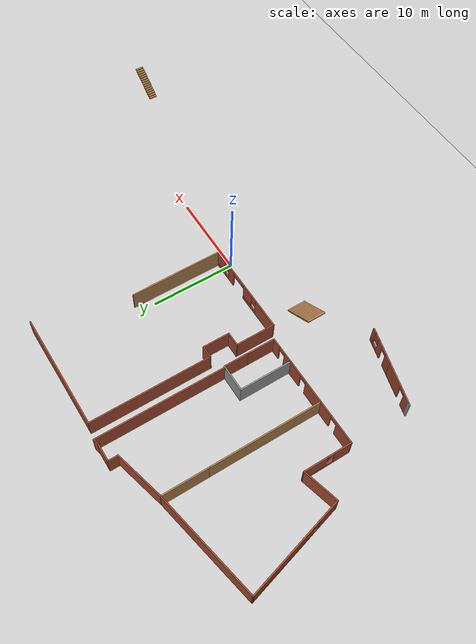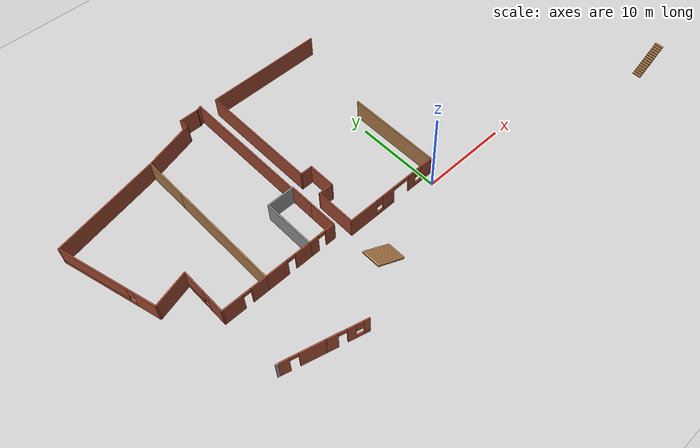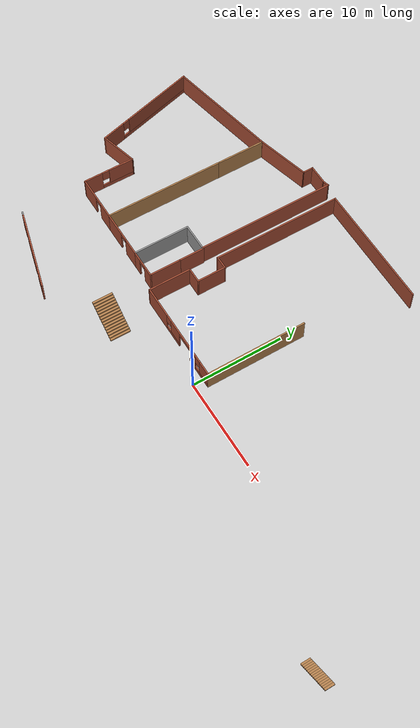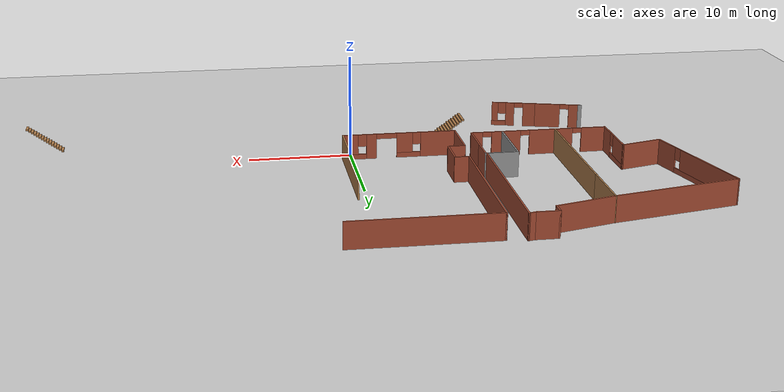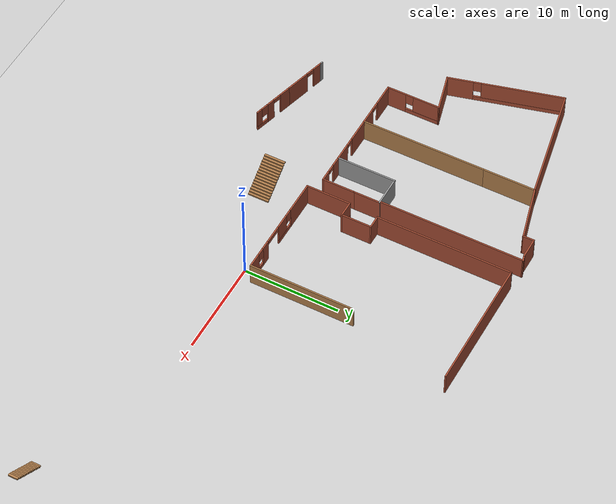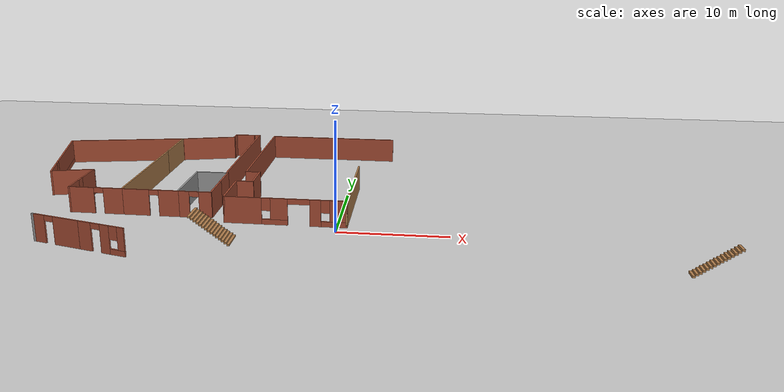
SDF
<sdf version="1.6">
 <world name="default">
  <model name="ground_plane">
   <static>1</static>
   <link name="link">
    <collision name="collision">
     <geometry><plane><normal>0 0 1</normal><size>100 100</size></plane></geometry>
     <surface><friction><ode><mu>100</mu><mu2>50</mu2></ode></friction></surface>
    </collision>
    <visual name="visual">
     <cast_shadows>0</cast_shadows>
     <geometry><plane><normal>0 0 1</normal><size>100 100</size></plane></geometry>
     <material>
      <script><uri>file://media/materials/scripts/gazebo.material</uri><name>Gazebo/Grey</name></script>
     </material>
    </visual>
   </link>
  </model>
  <model name="vital">
   <pose>1.2398 -2.19799 0 0 -0 0</pose>
   <link name="Stairs_0">
    <visual name="Stairs_0_Visual_0">
     <pose>-9.74123 -1.05523 0.083333 0 -0 -1.5708</pose>
     <geometry><box><size>2.22056 0.233333 0.166667</size></box></geometry>
     <material>
      <script><uri>file://media/materials/scripts/gazebo.material</uri><name>Gazebo/Wood</name></script>
      <ambient>1 1 1 1</ambient>
     </material>
    </visual>
    <collision name="Stairs_0_Collision_0">
     <geometry><box><size>2.22056 0.233333 0.166667</size></box></geometry>
     <pose>-9.74123 -1.05523 0.083333 0 -0 -1.5708</pose>
    </collision>
    <visual name="Stairs_0_Visual_1">
     <pose>-9.97456 -1.05523 0.25 0 -0 -1.5708</pose>
     <geometry><box><size>2.22056 0.233333 0.166667</size></box></geometry>
     <material>
      <script><uri>file://media/materials/scripts/gazebo.material</uri><name>Gazebo/Wood</name></script>
      <ambient>1 1 1 1</ambient>
     </material>
    </visual>
    <collision name="Stairs_0_Collision_1">
     <geometry><box><size>2.22056 0.233333 0.166667</size></box></geometry>
     <pose>-9.97456 -1.05523 0.25 0 -0 -1.5708</pose>
    </collision>
    <visual name="Stairs_0_Visual_2">
     <pose>-10.2079 -1.05523 0.416667 0 -0 -1.5708</pose>
     <geometry><box><size>2.22056 0.233333 0.166667</size></box></geometry>
     <material>
      <script><uri>file://media/materials/scripts/gazebo.material</uri><name>Gazebo/Wood</name></script>
      <ambient>1 1 1 1</ambient>
     </material>
    </visual>
    <collision name="Stairs_0_Collision_2">
     <geometry><box><size>2.22056 0.233333 0.166667</size></box></geometry>
     <pose>-10.2079 -1.05523 0.416667 0 -0 -1.5708</pose>
    </collision>
    <visual name="Stairs_0_Visual_3">
     <pose>-10.4412 -1.05523 0.583333 0 -0 -1.5708</pose>
     <geometry><box><size>2.22056 0.233333 0.166667</size></box></geometry>
     <material>
      <script><uri>file://media/materials/scripts/gazebo.material</uri><name>Gazebo/Wood</name></script>
      <ambient>1 1 1 1</ambient>
     </material>
    </visual>
    <collision name="Stairs_0_Collision_3">
     <geometry><box><size>2.22056 0.233333 0.166667</size></box></geometry>
     <pose>-10.4412 -1.05523 0.583333 0 -0 -1.5708</pose>
    </collision>
    <visual name="Stairs_0_Visual_4">
     <pose>-10.6746 -1.05523 0.75 0 -0 -1.5708</pose>
     <geometry><box><size>2.22056 0.233333 0.166667</size></box></geometry>
     <material>
      <script><uri>file://media/materials/scripts/gazebo.material</uri><name>Gazebo/Wood</name></script>
      <ambient>1 1 1 1</ambient>
     </material>
    </visual>
    <collision name="Stairs_0_Collision_4">
     <geometry><box><size>2.22056 0.233333 0.166667</size></box></geometry>
     <pose>-10.6746 -1.05523 0.75 0 -0 -1.5708</pose>
    </collision>
    <visual name="Stairs_0_Visual_5">
     <pose>-10.9079 -1.05523 0.916667 0 -0 -1.5708</pose>
     <geometry><box><size>2.22056 0.233333 0.166667</size></box></geometry>
     <material>
      <script><uri>file://media/materials/scripts/gazebo.material</uri><name>Gazebo/Wood</name></script>
      <ambient>1 1 1 1</ambient>
     </material>
    </visual>
    <collision name="Stairs_0_Collision_5">
     <geometry><box><size>2.22056 0.233333 0.166667</size></box></geometry>
     <pose>-10.9079 -1.05523 0.916667 0 -0 -1.5708</pose>
    </collision>
    <visual name="Stairs_0_Visual_6">
     <pose>-11.1412 -1.05523 1.08333 0 -0 -1.5708</pose>
     <geometry><box><size>2.22056 0.233333 0.166667</size></box></geometry>
     <material>
      <script><uri>file://media/materials/scripts/gazebo.material</uri><name>Gazebo/Wood</name></script>
      <ambient>1 1 1 1</ambient>
     </material>
    </visual>
    <collision name="Stairs_0_Collision_6">
     <geometry><box><size>2.22056 0.233333 0.166667</size></box></geometry>
     <pose>-11.1412 -1.05523 1.08333 0 -0 -1.5708</pose>
    </collision>
    <visual name="Stairs_0_Visual_7">
     <pose>-11.3746 -1.05523 1.25 0 -0 -1.5708</pose>
     <geometry><box><size>2.22056 0.233333 0.166667</size></box></geometry>
     <material>
      <script><uri>file://media/materials/scripts/gazebo.material</uri><name>Gazebo/Wood</name></script>
      <ambient>1 1 1 1</ambient>
     </material>
    </visual>
    <collision name="Stairs_0_Collision_7">
     <geometry><box><size>2.22056 0.233333 0.166667</size></box></geometry>
     <pose>-11.3746 -1.05523 1.25 0 -0 -1.5708</pose>
    </collision>
    <visual name="Stairs_0_Visual_8">
     <pose>-11.6079 -1.05523 1.41667 0 -0 -1.5708</pose>
     <geometry><box><size>2.22056 0.233333 0.166667</size></box></geometry>
     <material>
      <script><uri>file://media/materials/scripts/gazebo.material</uri><name>Gazebo/Wood</name></script>
      <ambient>1 1 1 1</ambient>
     </material>
    </visual>
    <collision name="Stairs_0_Collision_8">
     <geometry><box><size>2.22056 0.233333 0.166667</size></box></geometry>
     <pose>-11.6079 -1.05523 1.41667 0 -0 -1.5708</pose>
    </collision>
    <visual name="Stairs_0_Visual_9">
     <pose>-11.8412 -1.05523 1.58333 0 -0 -1.5708</pose>
     <geometry><box><size>2.22056 0.233333 0.166667</size></box></geometry>
     <material>
      <script><uri>file://media/materials/scripts/gazebo.material</uri><name>Gazebo/Wood</name></script>
      <ambient>1 1 1 1</ambient>
     </material>
    </visual>
    <collision name="Stairs_0_Collision_9">
     <geometry><box><size>2.22056 0.233333 0.166667</size></box></geometry>
     <pose>-11.8412 -1.05523 1.58333 0 -0 -1.5708</pose>
    </collision>
    <visual name="Stairs_0_Visual_10">
     <pose>-12.0746 -1.05523 1.75 0 -0 -1.5708</pose>
     <geometry><box><size>2.22056 0.233333 0.166667</size></box></geometry>
     <material>
      <script><uri>file://media/materials/scripts/gazebo.material</uri><name>Gazebo/Wood</name></script>
      <ambient>1 1 1 1</ambient>
     </material>
    </visual>
    <collision name="Stairs_0_Collision_10">
     <geometry><box><size>2.22056 0.233333 0.166667</size></box></geometry>
     <pose>-12.0746 -1.05523 1.75 0 -0 -1.5708</pose>
    </collision>
    <visual name="Stairs_0_Visual_11">
     <pose>-12.3079 -1.05523 1.91667 0 -0 -1.5708</pose>
     <geometry><box><size>2.22056 0.233333 0.166667</size></box></geometry>
     <material>
      <script><uri>file://media/materials/scripts/gazebo.material</uri><name>Gazebo/Wood</name></script>
      <ambient>1 1 1 1</ambient>
     </material>
    </visual>
    <collision name="Stairs_0_Collision_11">
     <geometry><box><size>2.22056 0.233333 0.166667</size></box></geometry>
     <pose>-12.3079 -1.05523 1.91667 0 -0 -1.5708</pose>
    </collision>
    <visual name="Stairs_0_Visual_12">
     <pose>-12.5412 -1.05523 2.08333 0 -0 -1.5708</pose>
     <geometry><box><size>2.22056 0.233333 0.166667</size></box></geometry>
     <material>
      <script><uri>file://media/materials/scripts/gazebo.material</uri><name>Gazebo/Wood</name></script>
      <ambient>1 1 1 1</ambient>
     </material>
    </visual>
    <collision name="Stairs_0_Collision_12">
     <geometry><box><size>2.22056 0.233333 0.166667</size></box></geometry>
     <pose>-12.5412 -1.05523 2.08333 0 -0 -1.5708</pose>
    </collision>
    <visual name="Stairs_0_Visual_13">
     <pose>-12.7746 -1.05523 2.25 0 -0 -1.5708</pose>
     <geometry><box><size>2.22056 0.233333 0.166667</size></box></geometry>
     <material>
      <script><uri>file://media/materials/scripts/gazebo.material</uri><name>Gazebo/Wood</name></script>
      <ambient>1 1 1 1</ambient>
     </material>
    </visual>
    <collision name="Stairs_0_Collision_13">
     <geometry><box><size>2.22056 0.233333 0.166667</size></box></geometry>
     <pose>-12.7746 -1.05523 2.25 0 -0 -1.5708</pose>
    </collision>
    <visual name="Stairs_0_Visual_14">
     <pose>-13.0079 -1.05522 2.41667 0 -0 -1.5708</pose>
     <geometry><box><size>2.22056 0.233333 0.166667</size></box></geometry>
     <material>
      <script><uri>file://media/materials/scripts/gazebo.material</uri><name>Gazebo/Wood</name></script>
      <ambient>1 1 1 1</ambient>
     </material>
    </visual>
    <collision name="Stairs_0_Collision_14">
     <geometry><box><size>2.22056 0.233333 0.166667</size></box></geometry>
     <pose>-13.0079 -1.05522 2.41667 0 -0 -1.5708</pose>
    </collision>
   </link>
   <link name="Stairs_1">
    <visual name="Stairs_1_Visual_0">
     <pose>27.018 -3.37906 0.083333 0 -0 1.5708</pose>
     <geometry><box><size>1 0.233333 0.166667</size></box></geometry>
     <material>
      <script><uri>file://media/materials/scripts/gazebo.material</uri><name>Gazebo/Wood</name></script>
      <ambient>1 1 1 1</ambient>
     </material>
    </visual>
    <collision name="Stairs_1_Collision_0">
     <geometry><box><size>1 0.233333 0.166667</size></box></geometry>
     <pose>27.018 -3.37906 0.083333 0 -0 1.5708</pose>
    </collision>
    <visual name="Stairs_1_Visual_1">
     <pose>27.2513 -3.37906 0.25 0 -0 1.5708</pose>
     <geometry><box><size>1 0.233333 0.166667</size></box></geometry>
     <material>
      <script><uri>file://media/materials/scripts/gazebo.material</uri><name>Gazebo/Wood</name></script>
      <ambient>1 1 1 1</ambient>
     </material>
    </visual>
    <collision name="Stairs_1_Collision_1">
     <geometry><box><size>1 0.233333 0.166667</size></box></geometry>
     <pose>27.2513 -3.37906 0.25 0 -0 1.5708</pose>
    </collision>
    <visual name="Stairs_1_Visual_2">
     <pose>27.4847 -3.37906 0.416667 0 -0 1.5708</pose>
     <geometry><box><size>1 0.233333 0.166667</size></box></geometry>
     <material>
      <script><uri>file://media/materials/scripts/gazebo.material</uri><name>Gazebo/Wood</name></script>
      <ambient>1 1 1 1</ambient>
     </material>
    </visual>
    <collision name="Stairs_1_Collision_2">
     <geometry><box><size>1 0.233333 0.166667</size></box></geometry>
     <pose>27.4847 -3.37906 0.416667 0 -0 1.5708</pose>
    </collision>
    <visual name="Stairs_1_Visual_3">
     <pose>27.718 -3.37906 0.583333 0 -0 1.5708</pose>
     <geometry><box><size>1 0.233333 0.166667</size></box></geometry>
     <material>
      <script><uri>file://media/materials/scripts/gazebo.material</uri><name>Gazebo/Wood</name></script>
      <ambient>1 1 1 1</ambient>
     </material>
    </visual>
    <collision name="Stairs_1_Collision_3">
     <geometry><box><size>1 0.233333 0.166667</size></box></geometry>
     <pose>27.718 -3.37906 0.583333 0 -0 1.5708</pose>
    </collision>
    <visual name="Stairs_1_Visual_4">
     <pose>27.9513 -3.37906 0.75 0 -0 1.5708</pose>
     <geometry><box><size>1 0.233333 0.166667</size></box></geometry>
     <material>
      <script><uri>file://media/materials/scripts/gazebo.material</uri><name>Gazebo/Wood</name></script>
      <ambient>1 1 1 1</ambient>
     </material>
    </visual>
    <collision name="Stairs_1_Collision_4">
     <geometry><box><size>1 0.233333 0.166667</size></box></geometry>
     <pose>27.9513 -3.37906 0.75 0 -0 1.5708</pose>
    </collision>
    <visual name="Stairs_1_Visual_5">
     <pose>28.1847 -3.37906 0.916667 0 -0 1.5708</pose>
     <geometry><box><size>1 0.233333 0.166667</size></box></geometry>
     <material>
      <script><uri>file://media/materials/scripts/gazebo.material</uri><name>Gazebo/Wood</name></script>
      <ambient>1 1 1 1</ambient>
     </material>
    </visual>
    <collision name="Stairs_1_Collision_5">
     <geometry><box><size>1 0.233333 0.166667</size></box></geometry>
     <pose>28.1847 -3.37906 0.916667 0 -0 1.5708</pose>
    </collision>
    <visual name="Stairs_1_Visual_6">
     <pose>28.418 -3.37906 1.08333 0 -0 1.5708</pose>
     <geometry><box><size>1 0.233333 0.166667</size></box></geometry>
     <material>
      <script><uri>file://media/materials/scripts/gazebo.material</uri><name>Gazebo/Wood</name></script>
      <ambient>1 1 1 1</ambient>
     </material>
    </visual>
    <collision name="Stairs_1_Collision_6">
     <geometry><box><size>1 0.233333 0.166667</size></box></geometry>
     <pose>28.418 -3.37906 1.08333 0 -0 1.5708</pose>
    </collision>
    <visual name="Stairs_1_Visual_7">
     <pose>28.6513 -3.37906 1.25 0 -0 1.5708</pose>
     <geometry><box><size>1 0.233333 0.166667</size></box></geometry>
     <material>
      <script><uri>file://media/materials/scripts/gazebo.material</uri><name>Gazebo/Wood</name></script>
      <ambient>1 1 1 1</ambient>
     </material>
    </visual>
    <collision name="Stairs_1_Collision_7">
     <geometry><box><size>1 0.233333 0.166667</size></box></geometry>
     <pose>28.6513 -3.37906 1.25 0 -0 1.5708</pose>
    </collision>
    <visual name="Stairs_1_Visual_8">
     <pose>28.8847 -3.37906 1.41667 0 -0 1.5708</pose>
     <geometry><box><size>1 0.233333 0.166667</size></box></geometry>
     <material>
      <script><uri>file://media/materials/scripts/gazebo.material</uri><name>Gazebo/Wood</name></script>
      <ambient>1 1 1 1</ambient>
     </material>
    </visual>
    <collision name="Stairs_1_Collision_8">
     <geometry><box><size>1 0.233333 0.166667</size></box></geometry>
     <pose>28.8847 -3.37906 1.41667 0 -0 1.5708</pose>
    </collision>
    <visual name="Stairs_1_Visual_9">
     <pose>29.118 -3.37906 1.58333 0 -0 1.5708</pose>
     <geometry><box><size>1 0.233333 0.166667</size></box></geometry>
     <material>
      <script><uri>file://media/materials/scripts/gazebo.material</uri><name>Gazebo/Wood</name></script>
      <ambient>1 1 1 1</ambient>
     </material>
    </visual>
    <collision name="Stairs_1_Collision_9">
     <geometry><box><size>1 0.233333 0.166667</size></box></geometry>
     <pose>29.118 -3.37906 1.58333 0 -0 1.5708</pose>
    </collision>
    <visual name="Stairs_1_Visual_10">
     <pose>29.3513 -3.37906 1.75 0 -0 1.5708</pose>
     <geometry><box><size>1 0.233333 0.166667</size></box></geometry>
     <material>
      <script><uri>file://media/materials/scripts/gazebo.material</uri><name>Gazebo/Wood</name></script>
      <ambient>1 1 1 1</ambient>
     </material>
    </visual>
    <collision name="Stairs_1_Collision_10">
     <geometry><box><size>1 0.233333 0.166667</size></box></geometry>
     <pose>29.3513 -3.37906 1.75 0 -0 1.5708</pose>
    </collision>
    <visual name="Stairs_1_Visual_11">
     <pose>29.5847 -3.37906 1.91667 0 -0 1.5708</pose>
     <geometry><box><size>1 0.233333 0.166667</size></box></geometry>
     <material>
      <script><uri>file://media/materials/scripts/gazebo.material</uri><name>Gazebo/Wood</name></script>
      <ambient>1 1 1 1</ambient>
     </material>
    </visual>
    <collision name="Stairs_1_Collision_11">
     <geometry><box><size>1 0.233333 0.166667</size></box></geometry>
     <pose>29.5847 -3.37906 1.91667 0 -0 1.5708</pose>
    </collision>
    <visual name="Stairs_1_Visual_12">
     <pose>29.818 -3.37906 2.08333 0 -0 1.5708</pose>
     <geometry><box><size>1 0.233333 0.166667</size></box></geometry>
     <material>
      <script><uri>file://media/materials/scripts/gazebo.material</uri><name>Gazebo/Wood</name></script>
      <ambient>1 1 1 1</ambient>
     </material>
    </visual>
    <collision name="Stairs_1_Collision_12">
     <geometry><box><size>1 0.233333 0.166667</size></box></geometry>
     <pose>29.818 -3.37906 2.08333 0 -0 1.5708</pose>
    </collision>
    <visual name="Stairs_1_Visual_13">
     <pose>30.0513 -3.37906 2.25 0 -0 1.5708</pose>
     <geometry><box><size>1 0.233333 0.166667</size></box></geometry>
     <material>
      <script><uri>file://media/materials/scripts/gazebo.material</uri><name>Gazebo/Wood</name></script>
      <ambient>1 1 1 1</ambient>
     </material>
    </visual>
    <collision name="Stairs_1_Collision_13">
     <geometry><box><size>1 0.233333 0.166667</size></box></geometry>
     <pose>30.0513 -3.37906 2.25 0 -0 1.5708</pose>
    </collision>
    <visual name="Stairs_1_Visual_14">
     <pose>30.2847 -3.37905 2.41667 0 -0 1.5708</pose>
     <geometry><box><size>1 0.233333 0.166667</size></box></geometry>
     <material>
      <script><uri>file://media/materials/scripts/gazebo.material</uri><name>Gazebo/Wood</name></script>
      <ambient>1 1 1 1</ambient>
     </material>
    </visual>
    <collision name="Stairs_1_Collision_14">
     <geometry><box><size>1 0.233333 0.166667</size></box></geometry>
     <pose>30.2847 -3.37905 2.41667 0 -0 1.5708</pose>
    </collision>
   </link>
   <link name="Wall_102">
    <collision name="Wall_102_Collision">
     <geometry><box><size>0.4 0.15 2.5</size></box></geometry>
     <pose>0 0 1.25 0 -0 0</pose>
    </collision>
    <visual name="Wall_102_Visual">
     <pose>0 0 1.25 0 -0 0</pose>
     <geometry><box><size>0.4 0.15 2.5</size></box></geometry>
     <material>
      <script><uri>file://media/materials/scripts/gazebo.material</uri><name>Gazebo/Grey</name></script>
      <ambient>1 1 1 1</ambient>
     </material>
    </visual>
    <pose>-26.1945 -3.08325 0 0 0 -0.261799</pose>
   </link>
   <link name="Wall_104">
    <pose>-19.5297 -4.8691 0 0 0 -0.261799</pose>
    <visual name="Wall_104_Visual_0">
     <pose>-1.62247 0 1.25 0 -0 0</pose>
     <geometry><box><size>1.25506 0.15 2.5</size></box></geometry>
     <material>
      <script><uri>file://media/materials/scripts/gazebo.material</uri><name>Gazebo/Bricks</name></script>
      <ambient>1 1 1 1</ambient>
     </material>
    </visual>
    <collision name="Wall_104_Collision_0">
     <geometry><box><size>1.25506 0.15 2.5</size></box></geometry>
     <pose>-1.62247 0 1.25 0 -0 0</pose>
    </collision>
    <visual name="Wall_104_Visual_1">
     <pose>0.350281 0 1.25 0 -0 0</pose>
     <geometry><box><size>0.890442 0.15 2.5</size></box></geometry>
     <material>
      <script><uri>file://media/materials/scripts/gazebo.material</uri><name>Gazebo/Bricks</name></script>
      <ambient>1 1 1 1</ambient>
     </material>
    </visual>
    <collision name="Wall_104_Collision_1">
     <geometry><box><size>0.890442 0.15 2.5</size></box></geometry>
     <pose>0.350281 0 1.25 0 -0 0</pose>
    </collision>
    <visual name="Wall_104_Visual_2">
     <pose>1.52275 0 0.25 0 -0 0</pose>
     <geometry><box><size>1.4545 0.15 0.5</size></box></geometry>
     <material>
      <script><uri>file://media/materials/scripts/gazebo.material</uri><name>Gazebo/Bricks</name></script>
      <ambient>1 1 1 1</ambient>
     </material>
    </visual>
    <collision name="Wall_104_Collision_2">
     <geometry><box><size>1.4545 0.15 0.5</size></box></geometry>
     <pose>1.52275 0 0.25 0 -0 0</pose>
    </collision>
    <visual name="Wall_104_Visual_3">
     <pose>1.92275 0 1.5 0 -0 0</pose>
     <geometry><box><size>0.654498 0.15 2</size></box></geometry>
     <material>
      <script><uri>file://media/materials/scripts/gazebo.material</uri><name>Gazebo/Bricks</name></script>
      <ambient>1 1 1 1</ambient>
     </material>
    </visual>
    <collision name="Wall_104_Collision_3">
     <geometry><box><size>0.654498 0.15 2</size></box></geometry>
     <pose>1.92275 0 1.5 0 -0 0</pose>
    </collision>
    <visual name="Wall_104_Visual_4">
     <pose>1.1955 0 1.9 0 -0 0</pose>
     <geometry><box><size>0.8 0.15 1.2</size></box></geometry>
     <material>
      <script><uri>file://media/materials/scripts/gazebo.material</uri><name>Gazebo/Bricks</name></script>
      <ambient>1 1 1 1</ambient>
     </material>
    </visual>
    <collision name="Wall_104_Collision_4">
     <geometry><box><size>0.8 0.15 1.2</size></box></geometry>
     <pose>1.1955 0 1.9 0 -0 0</pose>
    </collision>
    <visual name="Wall_104_Visual_5">
     <pose>-0.54494 0 2.25 0 -0 0</pose>
     <geometry><box><size>0.9 0.15 0.5</size></box></geometry>
     <material>
      <script><uri>file://media/materials/scripts/gazebo.material</uri><name>Gazebo/Bricks</name></script>
      <ambient>1 1 1 1</ambient>
     </material>
    </visual>
    <collision name="Wall_104_Collision_5">
     <geometry><box><size>0.9 0.15 0.5</size></box></geometry>
     <pose>-0.54494 0 2.25 0 -0 0</pose>
    </collision>
   </link>
   <link name="Wall_25">
    <collision name="Wall_25_Collision">
     <geometry><box><size>3.5 0.15 2.5</size></box></geometry>
     <pose>0 0 1.25 0 -0 0</pose>
    </collision>
    <visual name="Wall_25_Visual">
     <pose>0 0 1.25 0 -0 0</pose>
     <geometry><box><size>3.5 0.15 2.5</size></box></geometry>
     <material>
      <script><uri>file://media/materials/scripts/gazebo.material</uri><name>Gazebo/Bricks</name></script>
      <ambient>1 1 1 1</ambient>
     </material>
    </visual>
    <pose>-12.9307 5.97359 0 0 0 -1.5708</pose>
   </link>
   <link name="Wall_26">
    <pose>-14.4807 4.29859 0 0 -0 3.14159</pose>
    <visual name="Wall_26_Visual_0">
     <pose>-1.02242 0 1.25 0 -0 0</pose>
     <geometry><box><size>1.20517 0.15 2.5</size></box></geometry>
     <material>
      <script><uri>file://media/materials/scripts/gazebo.material</uri><name>Gazebo/Bricks</name></script>
      <ambient>1 1 1 1</ambient>
     </material>
    </visual>
    <collision name="Wall_26_Collision_0">
     <geometry><box><size>1.20517 0.15 2.5</size></box></geometry>
     <pose>-1.02242 0 1.25 0 -0 0</pose>
    </collision>
    <visual name="Wall_26_Visual_1">
     <pose>1.05258 0 1.25 0 -0 0</pose>
     <geometry><box><size>1.14483 0.15 2.5</size></box></geometry>
     <material>
      <script><uri>file://media/materials/scripts/gazebo.material</uri><name>Gazebo/Bricks</name></script>
      <ambient>1 1 1 1</ambient>
     </material>
    </visual>
    <collision name="Wall_26_Collision_1">
     <geometry><box><size>1.14483 0.15 2.5</size></box></geometry>
     <pose>1.05258 0 1.25 0 -0 0</pose>
    </collision>
    <visual name="Wall_26_Visual_2">
     <pose>0.030167 0 2.25 0 -0 0</pose>
     <geometry><box><size>0.9 0.15 0.5</size></box></geometry>
     <material>
      <script><uri>file://media/materials/scripts/gazebo.material</uri><name>Gazebo/Bricks</name></script>
      <ambient>1 1 1 1</ambient>
     </material>
    </visual>
    <collision name="Wall_26_Collision_2">
     <geometry><box><size>0.9 0.15 0.5</size></box></geometry>
     <pose>0.030167 0 2.25 0 -0 0</pose>
    </collision>
   </link>
   <link name="Wall_27">
    <collision name="Wall_27_Collision">
     <geometry><box><size>6.25 0.15 2.5</size></box></geometry>
     <pose>0 0 1.25 0 -0 0</pose>
    </collision>
    <visual name="Wall_27_Visual">
     <pose>0 0 1.25 0 -0 0</pose>
     <geometry><box><size>6.25 0.15 2.5</size></box></geometry>
     <material>
      <script><uri>file://media/materials/scripts/gazebo.material</uri><name>Gazebo/Grey</name></script>
      <ambient>1 1 1 1</ambient>
     </material>
    </visual>
    <pose>-16.0307 7.34859 0 0 -0 1.5708</pose>
   </link>
   <link name="Wall_28">
    <collision name="Wall_28_Collision">
     <geometry><box><size>3.25 0.15 2.5</size></box></geometry>
     <pose>0 0 1.25 0 -0 0</pose>
    </collision>
    <visual name="Wall_28_Visual">
     <pose>0 0 1.25 0 -0 0</pose>
     <geometry><box><size>3.25 0.15 2.5</size></box></geometry>
     <material>
      <script><uri>file://media/materials/scripts/gazebo.material</uri><name>Gazebo/Grey</name></script>
      <ambient>1 1 1 1</ambient>
     </material>
    </visual>
    <pose>-14.4807 10.3986 0 0 -0 0</pose>
   </link>
   <link name="Wall_29">
    <collision name="Wall_29_Collision">
     <geometry><box><size>2.9 0.15 2.5</size></box></geometry>
     <pose>0 0 1.25 0 -0 0</pose>
    </collision>
    <visual name="Wall_29_Visual">
     <pose>0 0 1.25 0 -0 0</pose>
     <geometry><box><size>2.9 0.15 2.5</size></box></geometry>
     <material>
      <script><uri>file://media/materials/scripts/gazebo.material</uri><name>Gazebo/Bricks</name></script>
      <ambient>1 1 1 1</ambient>
     </material>
    </visual>
    <pose>-12.9307 9.02359 0 0 0 -1.5708</pose>
   </link>
   <link name="Wall_31">
    <pose>-18.7057 4.29859 0 0 -0 3.14159</pose>
    <visual name="Wall_31_Visual_0">
     <pose>-1.79005 0 1.25 0 -0 0</pose>
     <geometry><box><size>1.91989 0.15 2.5</size></box></geometry>
     <material>
      <script><uri>file://media/materials/scripts/gazebo.material</uri><name>Gazebo/Bricks</name></script>
      <ambient>1 1 1 1</ambient>
     </material>
    </visual>
    <collision name="Wall_31_Collision_0">
     <geometry><box><size>1.91989 0.15 2.5</size></box></geometry>
     <pose>-1.79005 0 1.25 0 -0 0</pose>
    </collision>
    <visual name="Wall_31_Visual_1">
     <pose>1.40995 0 1.25 0 -0 0</pose>
     <geometry><box><size>2.68011 0.15 2.5</size></box></geometry>
     <material>
      <script><uri>file://media/materials/scripts/gazebo.material</uri><name>Gazebo/Bricks</name></script>
      <ambient>1 1 1 1</ambient>
     </material>
    </visual>
    <collision name="Wall_31_Collision_1">
     <geometry><box><size>2.68011 0.15 2.5</size></box></geometry>
     <pose>1.40995 0 1.25 0 -0 0</pose>
    </collision>
    <visual name="Wall_31_Visual_2">
     <pose>-0.380105 0 2.25 0 -0 0</pose>
     <geometry><box><size>0.9 0.15 0.5</size></box></geometry>
     <material>
      <script><uri>file://media/materials/scripts/gazebo.material</uri><name>Gazebo/Bricks</name></script>
      <ambient>1 1 1 1</ambient>
     </material>
    </visual>
    <collision name="Wall_31_Collision_2">
     <geometry><box><size>0.9 0.15 0.5</size></box></geometry>
     <pose>-0.380105 0 2.25 0 -0 0</pose>
    </collision>
   </link>
   <link name="Wall_32">
    <collision name="Wall_32_Collision">
     <geometry><box><size>13.25 0.15 2.5</size></box></geometry>
     <pose>0 0 1.25 0 -0 0</pose>
    </collision>
    <visual name="Wall_32_Visual">
     <pose>0 0 1.25 0 -0 0</pose>
     <geometry><box><size>13.25 0.15 2.5</size></box></geometry>
     <material>
      <script><uri>file://media/materials/scripts/gazebo.material</uri><name>Gazebo/Wood</name></script>
      <ambient>1 1 1 1</ambient>
     </material>
    </visual>
    <pose>-21.3807 10.8486 0 0 -0 1.5708</pose>
   </link>
   <link name="Wall_34">
    <collision name="Wall_34_Collision">
     <geometry><box><size>5.5 0.15 2.5</size></box></geometry>
     <pose>0 0 1.25 0 -0 0</pose>
    </collision>
    <visual name="Wall_34_Visual">
     <pose>0 0 1.25 0 -0 0</pose>
     <geometry><box><size>5.5 0.15 2.5</size></box></geometry>
     <material>
      <script><uri>file://media/materials/scripts/gazebo.material</uri><name>Gazebo/Wood</name></script>
      <ambient>1 1 1 1</ambient>
     </material>
    </visual>
    <pose>-21.3807 20.0736 0 0 -0 1.5708</pose>
   </link>
   <link name="Wall_35">
    <collision name="Wall_35_Collision">
     <geometry><box><size>6 0.15 2.5</size></box></geometry>
     <pose>0 0 1.25 0 -0 0</pose>
    </collision>
    <visual name="Wall_35_Visual">
     <pose>0 0 1.25 0 -0 0</pose>
     <geometry><box><size>6 0.15 2.5</size></box></geometry>
     <material>
      <script><uri>file://media/materials/scripts/gazebo.material</uri><name>Gazebo/Bricks</name></script>
      <ambient>1 1 1 1</ambient>
     </material>
    </visual>
    <pose>-18.5554 23.5056 0 0 -0 0.261799</pose>
   </link>
   <link name="Wall_36">
    <collision name="Wall_36_Collision">
     <geometry><box><size>1.25 0.15 2.5</size></box></geometry>
     <pose>0 0 1.25 0 -0 0</pose>
    </collision>
    <visual name="Wall_36_Visual">
     <pose>0 0 1.25 0 -0 0</pose>
     <geometry><box><size>1.25 0.15 2.5</size></box></geometry>
     <material>
      <script><uri>file://media/materials/scripts/gazebo.material</uri><name>Gazebo/Bricks</name></script>
      <ambient>1 1 1 1</ambient>
     </material>
    </visual>
    <pose>-15.73 24.8127 0 0 -0 1.5708</pose>
   </link>
   <link name="Wall_37">
    <collision name="Wall_37_Collision">
     <geometry><box><size>2.25 0.15 2.5</size></box></geometry>
     <pose>0 0 1.25 0 -0 0</pose>
    </collision>
    <visual name="Wall_37_Visual">
     <pose>0 0 1.25 0 -0 0</pose>
     <geometry><box><size>2.25 0.15 2.5</size></box></geometry>
     <material>
      <script><uri>file://media/materials/scripts/gazebo.material</uri><name>Gazebo/Bricks</name></script>
      <ambient>1 1 1 1</ambient>
     </material>
    </visual>
    <pose>-14.68 25.3627 0 0 -0 0</pose>
   </link>
   <link name="Wall_38">
    <collision name="Wall_38_Collision">
     <geometry><box><size>0.75 0.15 2.5</size></box></geometry>
     <pose>0 0 1.25 0 -0 0</pose>
    </collision>
    <visual name="Wall_38_Visual">
     <pose>0 0 1.25 0 -0 0</pose>
     <geometry><box><size>0.75 0.15 2.5</size></box></geometry>
     <material>
      <script><uri>file://media/materials/scripts/gazebo.material</uri><name>Gazebo/Bricks</name></script>
      <ambient>1 1 1 1</ambient>
     </material>
    </visual>
    <pose>-13.3403 25.4403 0 0 -0 0.261799</pose>
   </link>
   <link name="Wall_39">
    <collision name="Wall_39_Collision">
     <geometry><box><size>15.25 0.15 2.5</size></box></geometry>
     <pose>0 0 1.25 0 -0 0</pose>
    </collision>
    <visual name="Wall_39_Visual">
     <pose>0 0 1.25 0 -0 0</pose>
     <geometry><box><size>15.25 0.15 2.5</size></box></geometry>
     <material>
      <script><uri>file://media/materials/scripts/gazebo.material</uri><name>Gazebo/Bricks</name></script>
      <ambient>1 1 1 1</ambient>
     </material>
    </visual>
    <pose>-13.0505 17.968 0 0 0 -1.5708</pose>
   </link>
   <link name="Wall_43">
    <pose>-23.9307 4.29859 0 0 -0 3.14159</pose>
    <visual name="Wall_43_Visual_0">
     <pose>-1.69435 0 1.25 0 -0 0</pose>
     <geometry><box><size>1.86129 0.15 2.5</size></box></geometry>
     <material>
      <script><uri>file://media/materials/scripts/gazebo.material</uri><name>Gazebo/Bricks</name></script>
      <ambient>1 1 1 1</ambient>
     </material>
    </visual>
    <collision name="Wall_43_Collision_0">
     <geometry><box><size>1.86129 0.15 2.5</size></box></geometry>
     <pose>-1.69435 0 1.25 0 -0 0</pose>
    </collision>
    <visual name="Wall_43_Visual_1">
     <pose>1.38065 0 1.25 0 -0 0</pose>
     <geometry><box><size>2.48871 0.15 2.5</size></box></geometry>
     <material>
      <script><uri>file://media/materials/scripts/gazebo.material</uri><name>Gazebo/Bricks</name></script>
      <ambient>1 1 1 1</ambient>
     </material>
    </visual>
    <collision name="Wall_43_Collision_1">
     <geometry><box><size>2.48871 0.15 2.5</size></box></geometry>
     <pose>1.38065 0 1.25 0 -0 0</pose>
    </collision>
    <visual name="Wall_43_Visual_2">
     <pose>-0.313707 0 2.25 0 -0 0</pose>
     <geometry><box><size>0.9 0.15 0.5</size></box></geometry>
     <material>
      <script><uri>file://media/materials/scripts/gazebo.material</uri><name>Gazebo/Bricks</name></script>
      <ambient>1 1 1 1</ambient>
     </material>
    </visual>
    <collision name="Wall_43_Collision_2">
     <geometry><box><size>0.9 0.15 0.5</size></box></geometry>
     <pose>-0.313707 0 2.25 0 -0 0</pose>
    </collision>
   </link>
   <link name="Wall_44">
    <pose>-26.4807 7.09859 0 0 -0 1.5708</pose>
    <visual name="Wall_44_Visual_0">
     <pose>-1.83896 0 1.25 0 -0 0</pose>
     <geometry><box><size>2.07209 0.15 2.5</size></box></geometry>
     <material>
      <script><uri>file://media/materials/scripts/gazebo.material</uri><name>Gazebo/Bricks</name></script>
      <ambient>1 1 1 1</ambient>
     </material>
    </visual>
    <collision name="Wall_44_Collision_0">
     <geometry><box><size>2.07209 0.15 2.5</size></box></geometry>
     <pose>-1.83896 0 1.25 0 -0 0</pose>
    </collision>
    <visual name="Wall_44_Visual_1">
     <pose>1.03604 0 0.25 0 -0 0</pose>
     <geometry><box><size>3.67791 0.15 0.5</size></box></geometry>
     <material>
      <script><uri>file://media/materials/scripts/gazebo.material</uri><name>Gazebo/Bricks</name></script>
      <ambient>1 1 1 1</ambient>
     </material>
    </visual>
    <collision name="Wall_44_Collision_1">
     <geometry><box><size>3.67791 0.15 0.5</size></box></geometry>
     <pose>1.03604 0 0.25 0 -0 0</pose>
    </collision>
    <visual name="Wall_44_Visual_2">
     <pose>1.43604 0 1.5 0 -0 0</pose>
     <geometry><box><size>2.87791 0.15 2</size></box></geometry>
     <material>
      <script><uri>file://media/materials/scripts/gazebo.material</uri><name>Gazebo/Bricks</name></script>
      <ambient>1 1 1 1</ambient>
     </material>
    </visual>
    <collision name="Wall_44_Collision_2">
     <geometry><box><size>2.87791 0.15 2</size></box></geometry>
     <pose>1.43604 0 1.5 0 -0 0</pose>
    </collision>
    <visual name="Wall_44_Visual_3">
     <pose>-0.402914 0 1.9 0 -0 0</pose>
     <geometry><box><size>0.8 0.15 1.2</size></box></geometry>
     <material>
      <script><uri>file://media/materials/scripts/gazebo.material</uri><name>Gazebo/Bricks</name></script>
      <ambient>1 1 1 1</ambient>
     </material>
    </visual>
    <collision name="Wall_44_Collision_3">
     <geometry><box><size>0.8 0.15 1.2</size></box></geometry>
     <pose>-0.402914 0 1.9 0 -0 0</pose>
    </collision>
   </link>
   <link name="Wall_45">
    <collision name="Wall_45_Collision">
     <geometry><box><size>4.25 0.15 2.5</size></box></geometry>
     <pose>0 0 1.25 0 -0 0</pose>
    </collision>
    <visual name="Wall_45_Visual">
     <pose>0 0 1.25 0 -0 0</pose>
     <geometry><box><size>4.25 0.15 2.5</size></box></geometry>
     <material>
      <script><uri>file://media/materials/scripts/gazebo.material</uri><name>Gazebo/Bricks</name></script>
      <ambient>1 1 1 1</ambient>
     </material>
    </visual>
    <pose>-28.4609 9.36801 0 0 0 -2.87979</pose>
   </link>
   <link name="Wall_46">
    <pose>-31.9745 14.5605 0 0 -0 1.8326</pose>
    <visual name="Wall_46_Visual_0">
     <pose>-4.62909 0 1.25 0 -0 0</pose>
     <geometry><box><size>2.74183 0.15 2.5</size></box></geometry>
     <material>
      <script><uri>file://media/materials/scripts/gazebo.material</uri><name>Gazebo/Bricks</name></script>
      <ambient>1 1 1 1</ambient>
     </material>
    </visual>
    <collision name="Wall_46_Collision_0">
     <geometry><box><size>2.74183 0.15 2.5</size></box></geometry>
     <pose>-4.62909 0 1.25 0 -0 0</pose>
    </collision>
    <visual name="Wall_46_Visual_1">
     <pose>1.37091 0 0.25 0 -0 0</pose>
     <geometry><box><size>9.25817 0.15 0.5</size></box></geometry>
     <material>
      <script><uri>file://media/materials/scripts/gazebo.material</uri><name>Gazebo/Bricks</name></script>
      <ambient>1 1 1 1</ambient>
     </material>
    </visual>
    <collision name="Wall_46_Collision_1">
     <geometry><box><size>9.25817 0.15 0.5</size></box></geometry>
     <pose>1.37091 0 0.25 0 -0 0</pose>
    </collision>
    <visual name="Wall_46_Visual_2">
     <pose>1.77091 0 1.5 0 -0 0</pose>
     <geometry><box><size>8.45817 0.15 2</size></box></geometry>
     <material>
      <script><uri>file://media/materials/scripts/gazebo.material</uri><name>Gazebo/Bricks</name></script>
      <ambient>1 1 1 1</ambient>
     </material>
    </visual>
    <collision name="Wall_46_Collision_2">
     <geometry><box><size>8.45817 0.15 2</size></box></geometry>
     <pose>1.77091 0 1.5 0 -0 0</pose>
    </collision>
    <visual name="Wall_46_Visual_3">
     <pose>-2.85817 0 1.9 0 -0 0</pose>
     <geometry><box><size>0.8 0.15 1.2</size></box></geometry>
     <material>
      <script><uri>file://media/materials/scripts/gazebo.material</uri><name>Gazebo/Bricks</name></script>
      <ambient>1 1 1 1</ambient>
     </material>
    </visual>
    <collision name="Wall_46_Collision_3">
     <geometry><box><size>0.8 0.15 1.2</size></box></geometry>
     <pose>-2.85817 0 1.9 0 -0 0</pose>
    </collision>
   </link>
   <link name="Wall_47">
    <collision name="Wall_47_Collision">
     <geometry><box><size>12.5253 0.15 2.5</size></box></geometry>
     <pose>0 0 1.25 0 -0 0</pose>
    </collision>
    <visual name="Wall_47_Visual">
     <pose>0 0 1.25 0 -0 0</pose>
     <geometry><box><size>12.5253 0.15 2.5</size></box></geometry>
     <material>
      <script><uri>file://media/materials/scripts/gazebo.material</uri><name>Gazebo/Bricks</name></script>
      <ambient>1 1 1 1</ambient>
     </material>
    </visual>
    <pose>-27.4444 21.5161 0 0 -0 0.200524</pose>
   </link>
   <link name="Wall_49">
    <collision name="Wall_49_Collision">
     <geometry><box><size>4.75 0.15 2.5</size></box></geometry>
     <pose>0 0 1.25 0 -0 0</pose>
    </collision>
    <visual name="Wall_49_Visual">
     <pose>0 0 1.25 0 -0 0</pose>
     <geometry><box><size>4.75 0.15 2.5</size></box></geometry>
     <material>
      <script><uri>file://media/materials/scripts/gazebo.material</uri><name>Gazebo/Bricks</name></script>
      <ambient>1 1 1 1</ambient>
     </material>
    </visual>
    <pose>-11.4692 5.66796 0 0 0 -1.5708</pose>
   </link>
   <link name="Wall_50">
    <pose>-5.91922 3.36796 0 0 -0 0</pose>
    <visual name="Wall_50_Visual_0">
     <pose>-3.87066 0 1.25 0 -0 0</pose>
     <geometry><box><size>3.50867 0.15 2.5</size></box></geometry>
     <material>
      <script><uri>file://media/materials/scripts/gazebo.material</uri><name>Gazebo/Bricks</name></script>
      <ambient>1 1 1 1</ambient>
     </material>
    </visual>
    <collision name="Wall_50_Collision_0">
     <geometry><box><size>3.50867 0.15 2.5</size></box></geometry>
     <pose>-3.87066 0 1.25 0 -0 0</pose>
    </collision>
    <visual name="Wall_50_Visual_1">
     <pose>2.75347 0 1.25 0 -0 0</pose>
     <geometry><box><size>1.00133 0.15 2.5</size></box></geometry>
     <material>
      <script><uri>file://media/materials/scripts/gazebo.material</uri><name>Gazebo/Bricks</name></script>
      <ambient>1 1 1 1</ambient>
     </material>
    </visual>
    <collision name="Wall_50_Collision_1">
     <geometry><box><size>1.00133 0.15 2.5</size></box></geometry>
     <pose>2.75347 0 1.25 0 -0 0</pose>
    </collision>
    <visual name="Wall_50_Visual_2">
     <pose>-0.931761 0 0.25 0 -0 0</pose>
     <geometry><box><size>2.36914 0.15 0.5</size></box></geometry>
     <material>
      <script><uri>file://media/materials/scripts/gazebo.material</uri><name>Gazebo/Bricks</name></script>
      <ambient>1 1 1 1</ambient>
     </material>
    </visual>
    <collision name="Wall_50_Collision_2">
     <geometry><box><size>2.36914 0.15 0.5</size></box></geometry>
     <pose>-0.931761 0 0.25 0 -0 0</pose>
    </collision>
    <visual name="Wall_50_Visual_3">
     <pose>4.43957 0 0.25 0 -0 0</pose>
     <geometry><box><size>2.37087 0.15 0.5</size></box></geometry>
     <material>
      <script><uri>file://media/materials/scripts/gazebo.material</uri><name>Gazebo/Bricks</name></script>
      <ambient>1 1 1 1</ambient>
     </material>
    </visual>
    <collision name="Wall_50_Collision_3">
     <geometry><box><size>2.37087 0.15 0.5</size></box></geometry>
     <pose>4.43957 0 0.25 0 -0 0</pose>
    </collision>
    <visual name="Wall_50_Visual_4">
     <pose>-0.531761 0 1.5 0 -0 0</pose>
     <geometry><box><size>1.56914 0.15 2</size></box></geometry>
     <material>
      <script><uri>file://media/materials/scripts/gazebo.material</uri><name>Gazebo/Bricks</name></script>
      <ambient>1 1 1 1</ambient>
     </material>
    </visual>
    <collision name="Wall_50_Collision_4">
     <geometry><box><size>1.56914 0.15 2</size></box></geometry>
     <pose>-0.531761 0 1.5 0 -0 0</pose>
    </collision>
    <visual name="Wall_50_Visual_5">
     <pose>-0.531761 0 1.5 0 -0 0</pose>
     <geometry><box><size>1.56914 0.15 2</size></box></geometry>
     <material>
      <script><uri>file://media/materials/scripts/gazebo.material</uri><name>Gazebo/Bricks</name></script>
      <ambient>1 1 1 1</ambient>
     </material>
    </visual>
    <collision name="Wall_50_Collision_5">
     <geometry><box><size>1.56914 0.15 2</size></box></geometry>
     <pose>-0.531761 0 1.5 0 -0 0</pose>
    </collision>
    <visual name="Wall_50_Visual_6">
     <pose>4.83957 0 1.5 0 -0 0</pose>
     <geometry><box><size>1.57087 0.15 2</size></box></geometry>
     <material>
      <script><uri>file://media/materials/scripts/gazebo.material</uri><name>Gazebo/Bricks</name></script>
      <ambient>1 1 1 1</ambient>
     </material>
    </visual>
    <collision name="Wall_50_Collision_6">
     <geometry><box><size>1.57087 0.15 2</size></box></geometry>
     <pose>4.83957 0 1.5 0 -0 0</pose>
    </collision>
    <visual name="Wall_50_Visual_7">
     <pose>-1.71633 0 1.9 0 -0 0</pose>
     <geometry><box><size>0.8 0.15 1.2</size></box></geometry>
     <material>
      <script><uri>file://media/materials/scripts/gazebo.material</uri><name>Gazebo/Bricks</name></script>
      <ambient>1 1 1 1</ambient>
     </material>
    </visual>
    <collision name="Wall_50_Collision_7">
     <geometry><box><size>0.8 0.15 1.2</size></box></geometry>
     <pose>-1.71633 0 1.9 0 -0 0</pose>
    </collision>
    <visual name="Wall_50_Visual_8">
     <pose>3.65413 0 1.9 0 -0 0</pose>
     <geometry><box><size>0.8 0.15 1.2</size></box></geometry>
     <material>
      <script><uri>file://media/materials/scripts/gazebo.material</uri><name>Gazebo/Bricks</name></script>
      <ambient>1 1 1 1</ambient>
     </material>
    </visual>
    <collision name="Wall_50_Collision_8">
     <geometry><box><size>0.8 0.15 1.2</size></box></geometry>
     <pose>3.65413 0 1.9 0 -0 0</pose>
    </collision>
    <visual name="Wall_50_Visual_9">
     <pose>1.25281 0 2.25 0 -0 0</pose>
     <geometry><box><size>2 0.15 0.5</size></box></geometry>
     <material>
      <script><uri>file://media/materials/scripts/gazebo.material</uri><name>Gazebo/Bricks</name></script>
      <ambient>1 1 1 1</ambient>
     </material>
    </visual>
    <collision name="Wall_50_Collision_9">
     <geometry><box><size>2 0.15 0.5</size></box></geometry>
     <pose>1.25281 0 2.25 0 -0 0</pose>
    </collision>
    <visual name="Wall_50_Visual_10">
     <pose>1.25281 0 2.25 0 -0 0</pose>
     <geometry><box><size>2 0.15 0.5</size></box></geometry>
     <material>
      <script><uri>file://media/materials/scripts/gazebo.material</uri><name>Gazebo/Bricks</name></script>
      <ambient>1 1 1 1</ambient>
     </material>
    </visual>
    <collision name="Wall_50_Collision_10">
     <geometry><box><size>2 0.15 0.5</size></box></geometry>
     <pose>1.25281 0 2.25 0 -0 0</pose>
    </collision>
   </link>
   <link name="Wall_51">
    <collision name="Wall_51_Collision">
     <geometry><box><size>11 0.15 2.5</size></box></geometry>
     <pose>0 0 1.25 0 -0 0</pose>
    </collision>
    <visual name="Wall_51_Visual">
     <pose>0 0 1.25 0 -0 0</pose>
     <geometry><box><size>11 0.15 2.5</size></box></geometry>
     <material>
      <script><uri>file://media/materials/scripts/gazebo.material</uri><name>Gazebo/Wood</name></script>
      <ambient>1 1 1 1</ambient>
     </material>
    </visual>
    <pose>-0.369221 8.79296 0 0 -0 1.5708</pose>
   </link>
   <link name="Wall_56">
    <collision name="Wall_56_Collision">
     <geometry><box><size>1.75 0.15 2.5</size></box></geometry>
     <pose>0 0 1.25 0 -0 0</pose>
    </collision>
    <visual name="Wall_56_Visual">
     <pose>0 0 1.25 0 -0 0</pose>
     <geometry><box><size>1.75 0.15 2.5</size></box></geometry>
     <material>
      <script><uri>file://media/materials/scripts/gazebo.material</uri><name>Gazebo/Bricks</name></script>
      <ambient>1 1 1 1</ambient>
     </material>
    </visual>
    <pose>-10.6692 7.96796 0 0 -0 0</pose>
   </link>
   <link name="Wall_57">
    <collision name="Wall_57_Collision">
     <geometry><box><size>3.25 0.15 2.5</size></box></geometry>
     <pose>0 0 1.25 0 -0 0</pose>
    </collision>
    <visual name="Wall_57_Visual">
     <pose>0 0 1.25 0 -0 0</pose>
     <geometry><box><size>3.25 0.15 2.5</size></box></geometry>
     <material>
      <script><uri>file://media/materials/scripts/gazebo.material</uri><name>Gazebo/Bricks</name></script>
      <ambient>1 1 1 1</ambient>
     </material>
    </visual>
    <pose>-9.86922 9.51796 0 0 -0 1.5708</pose>
   </link>
   <link name="Wall_58">
    <collision name="Wall_58_Collision">
     <geometry><box><size>1.5 0.15 2.5</size></box></geometry>
     <pose>0 0 1.25 0 -0 0</pose>
    </collision>
    <visual name="Wall_58_Visual">
     <pose>0 0 1.25 0 -0 0</pose>
     <geometry><box><size>1.5 0.15 2.5</size></box></geometry>
     <material>
      <script><uri>file://media/materials/scripts/gazebo.material</uri><name>Gazebo/Bricks</name></script>
      <ambient>1 1 1 1</ambient>
     </material>
    </visual>
    <pose>-10.5442 11.068 0 0 -0 3.14159</pose>
   </link>
   <link name="Wall_59">
    <collision name="Wall_59_Collision">
     <geometry><box><size>14.25 0.15 2.5</size></box></geometry>
     <pose>0 0 1.25 0 -0 0</pose>
    </collision>
    <visual name="Wall_59_Visual">
     <pose>0 0 1.25 0 -0 0</pose>
     <geometry><box><size>14.25 0.15 2.5</size></box></geometry>
     <material>
      <script><uri>file://media/materials/scripts/gazebo.material</uri><name>Gazebo/Bricks</name></script>
      <ambient>1 1 1 1</ambient>
     </material>
    </visual>
    <pose>-11.2192 18.118 0 0 -0 1.5708</pose>
   </link>
   <link name="Wall_60">
    <collision name="Wall_60_Collision">
     <geometry><box><size>13.75 0.15 2.5</size></box></geometry>
     <pose>0 0 1.25 0 -0 0</pose>
    </collision>
    <visual name="Wall_60_Visual">
     <pose>0 0 1.25 0 -0 0</pose>
     <geometry><box><size>13.75 0.15 2.5</size></box></geometry>
     <material>
      <script><uri>file://media/materials/scripts/gazebo.material</uri><name>Gazebo/Bricks</name></script>
      <ambient>1 1 1 1</ambient>
     </material>
    </visual>
    <pose>-4.41922 25.168 0 0 -0 0</pose>
   </link>
   <link name="Wall_98">
    <pose>-23.8522 -3.71089 0 0 0 -0.261799</pose>
    <visual name="Wall_98_Visual_0">
     <pose>-1.8244 0 1.25 0 -0 0</pose>
     <geometry><box><size>1.10119 0.15 2.5</size></box></geometry>
     <material>
      <script><uri>file://media/materials/scripts/gazebo.material</uri><name>Gazebo/Bricks</name></script>
      <ambient>1 1 1 1</ambient>
     </material>
    </visual>
    <collision name="Wall_98_Collision_0">
     <geometry><box><size>1.10119 0.15 2.5</size></box></geometry>
     <pose>-1.8244 0 1.25 0 -0 0</pose>
    </collision>
    <visual name="Wall_98_Visual_1">
     <pose>1.0006 0 1.25 0 -0 0</pose>
     <geometry><box><size>2.74881 0.15 2.5</size></box></geometry>
     <material>
      <script><uri>file://media/materials/scripts/gazebo.material</uri><name>Gazebo/Bricks</name></script>
      <ambient>1 1 1 1</ambient>
     </material>
    </visual>
    <collision name="Wall_98_Collision_1">
     <geometry><box><size>2.74881 0.15 2.5</size></box></geometry>
     <pose>1.0006 0 1.25 0 -0 0</pose>
    </collision>
    <visual name="Wall_98_Visual_2">
     <pose>-0.823808 0 2.25 0 -0 0</pose>
     <geometry><box><size>0.9 0.15 0.5</size></box></geometry>
     <material>
      <script><uri>file://media/materials/scripts/gazebo.material</uri><name>Gazebo/Bricks</name></script>
      <ambient>1 1 1 1</ambient>
     </material>
    </visual>
    <collision name="Wall_98_Collision_2">
     <geometry><box><size>0.9 0.15 0.5</size></box></geometry>
     <pose>-0.823808 0 2.25 0 -0 0</pose>
    </collision>
   </link>
   <static>1</static>
  </model>
 </world>
</sdf>
